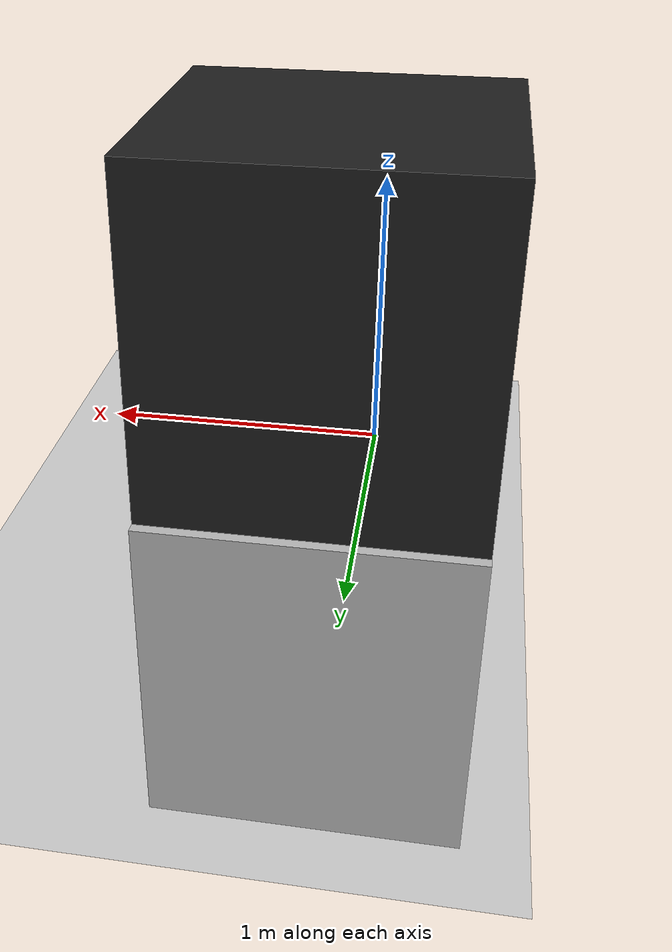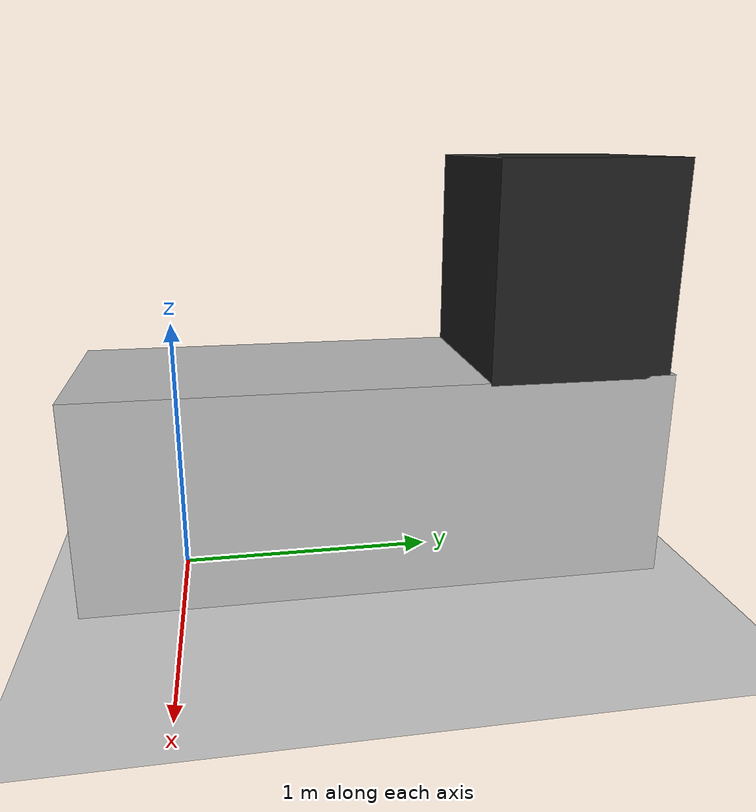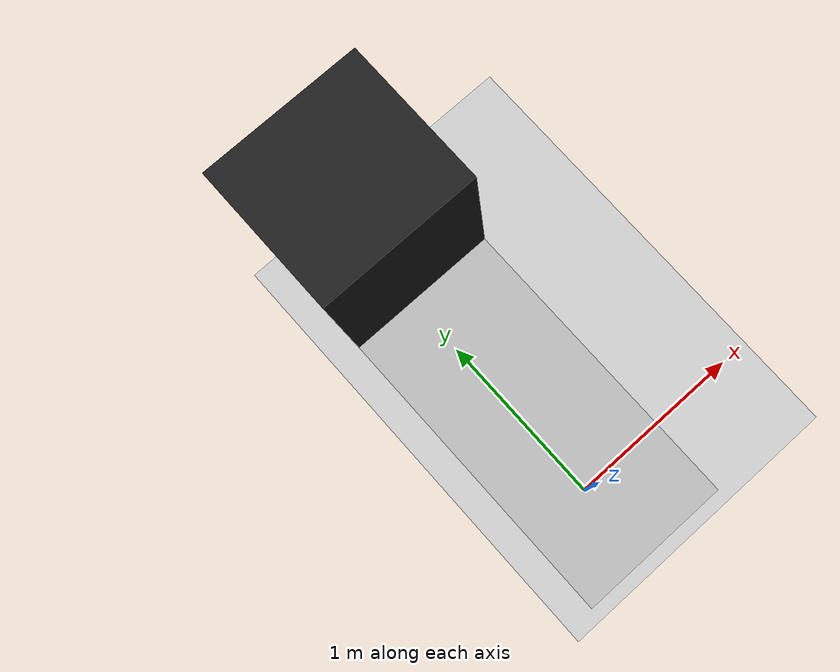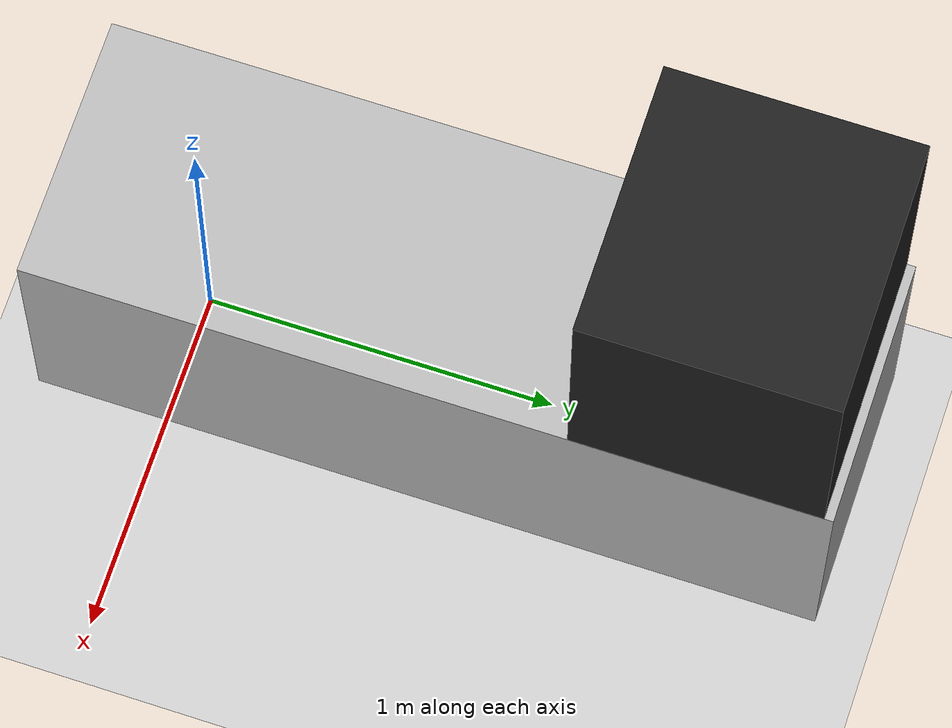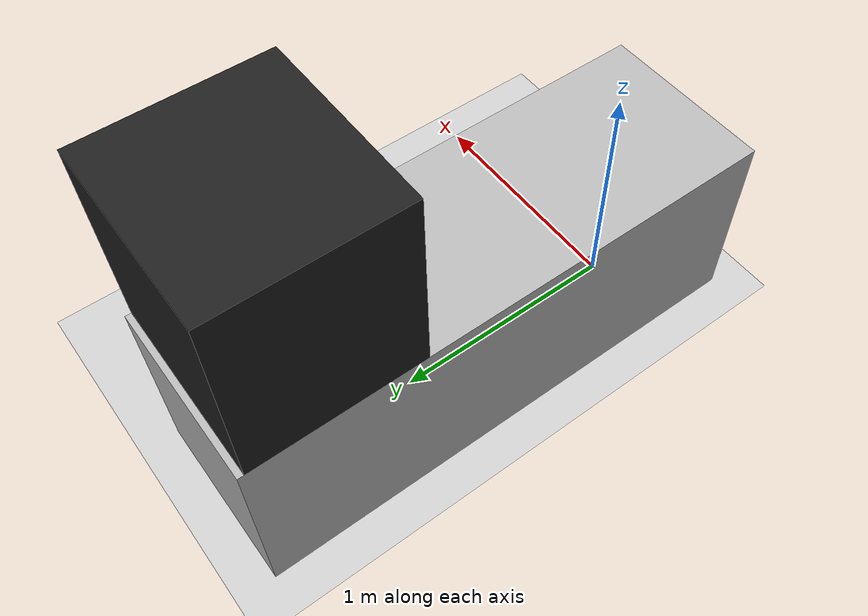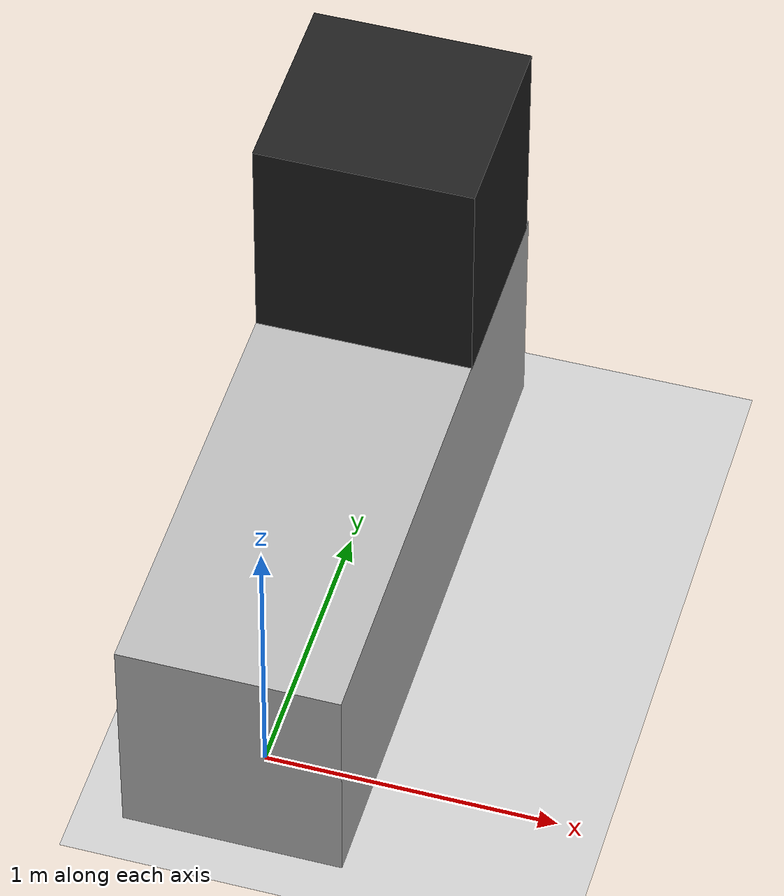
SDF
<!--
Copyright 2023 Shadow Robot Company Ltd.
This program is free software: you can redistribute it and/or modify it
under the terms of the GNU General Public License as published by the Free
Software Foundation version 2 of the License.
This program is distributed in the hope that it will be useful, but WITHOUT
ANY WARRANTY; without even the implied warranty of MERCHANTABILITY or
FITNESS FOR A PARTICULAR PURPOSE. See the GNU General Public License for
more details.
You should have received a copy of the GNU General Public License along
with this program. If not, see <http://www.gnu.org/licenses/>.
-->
<?xml version="1.0" ?>

<sdf version="1.4">
  <world name="default">
    <!-- Floor and Ceiling -->
    <include>
      <uri>model://ground</uri>
      <name>ground</name>
      <pose>-0.20 0.80 0.0 0 0 0</pose>
    </include>
    <light type="directional" name="lab_light">
      <pose>0.86 1.96 2.5 -1.55 0 0</pose>
      <diffuse>.8 .8 .8 1</diffuse>
      <specular>.2 .2 .2 1</specular>
      <attenuation>
        <range>20</range>
        <constant>0.9</constant>
        <linear>0.01</linear>
        <quadratic>0.001</quadratic>
      </attenuation>
      <direction>0 0 -1</direction>
      <cast_shadows>true</cast_shadows>
    </light>
    <include>
      <uri>model://bimanual_stand</uri>
      <static>true</static>
      <name>bimanual_stand</name>
      <pose>0 0.75 0.41 0 0 0</pose>
    </include>
    <include>
      <uri>model://robot_safe_store</uri>
      <static>true</static>
      <name>robot_safe_store</name>
      <pose>0.0 1.5 1.21 0 0 0</pose>
    </include>
    <physics type="ode">
      <gravity>0.000000 0.000000 -9.810000</gravity>
      <ode>
        <solver>
          <type>quick</type>
          <iters>100</iters>
          <precon_iters>0</precon_iters>
          <sor>1.000000</sor>
        </solver>
        <constraints>
          <cfm>0.000000</cfm>
          <erp>0.500000</erp>
          <contact_max_correcting_vel>1000.000000</contact_max_correcting_vel>
          <contact_surface_layer>0.00000</contact_surface_layer>
        </constraints>
      </ode>
      <real_time_factor>1.0</real_time_factor>
      <max_step_size>0.001000</max_step_size>
    </physics>
    <scene>
      <ambient>0.4 0.4 0.4 1</ambient>
      <background>0.7 0.7 1 1</background>
      <shadows>1</shadows>
    </scene>
    <gui fullscreen='0'>
      <camera name='user_camera'>
        <pose frame=''>2.8784 4.2586 1.43117 0 0.083643 -2.30699</pose>
        <view_controller>orbit</view_controller>
      </camera>
    </gui>
  </world>
</sdf>

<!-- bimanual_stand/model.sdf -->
<sdf version="1.4">
<model name="bimanual_stand">
  <static>true</static>
    <link name="link">
      <inertial>
        <mass>1.0</mass>
        <inertia>
          <!-- http://answers.gazebosim.org/question/4372/the-inertia-matrix-explained/ -->
          <ixx>0.4779</ixx>
          <ixy>0.0</ixy>
          <ixz>0.0</ixz>
          <iyy>0.1029</iyy>
          <iyz>0.0</iyz>
          <izz>0.4687</izz>
        </inertia>
      </inertial>
      <collision name="collision">
        <geometry>
          <box>
            <size>0.75 2.25 0.82</size>
          </box>
        </geometry>
      </collision>
      <visual name="visual">
        <geometry>
          <box>
            <size>0.75 2.25 0.82</size>
          </box>
        </geometry>
      </visual>
    </link>
  </model>
</sdf>

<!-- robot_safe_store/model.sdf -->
<sdf version="1.4">
<model name="robot_safe_store">
    <static>true</static>
    <link name="link">
      <collision name="collision_robot_safe_store">
        <geometry>
          <box>
            <size>0.75 0.7 0.8</size>
          </box>
        </geometry>
      </collision>
      <visual name="visual_base_robot_safe_store">
        <geometry>
          <box>
            <size>0.75 0.7 0.8</size>
          </box>
        </geometry>
        <material>
          <script>
            <uri>file://media/materials/scripts/gazebo.material</uri>
            <name>Gazebo/Black</name>
          </script>
        </material>
      </visual>
    </link>
  </model>
</sdf>
